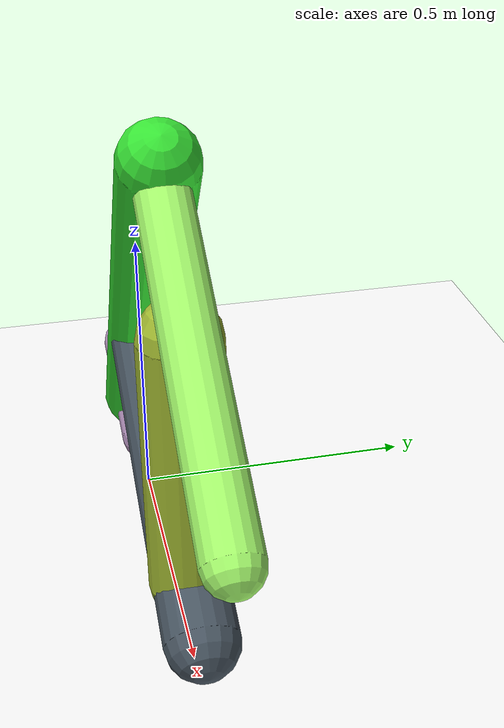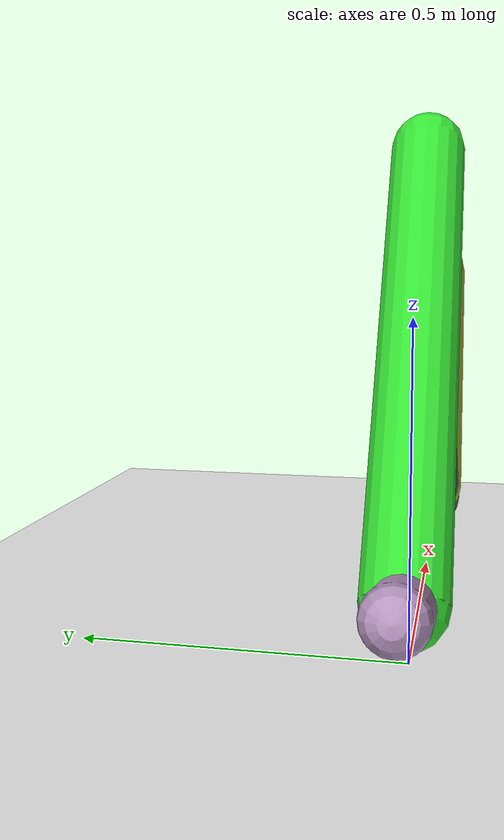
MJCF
<mujoco model="morphology">
  <option timestep="0.01"/>
  <default>
    <default class="/"/>
    <default class="0/"/>
    <default class="0/1/"/>
    <default class="0/1/2/"/>
    <default class="0/1/3/"/>
    <default class="0/1/3/4/"/>
  </default>
  <asset>
    <texture name="texplane" type="2d" builtin="checker" rgb1="0.10000000000000001 0.20000000000000001 0.29999999999999999" rgb2="0.20000000000000001 0.29999999999999999 0.40000000000000002" width="300" height="300"/>
    <material name="MatPlane" class="/" texture="texplane" texrepeat="20 20" specular="1" shininess="1" reflectance="0.5"/>
  </asset>
  <worldbody>
    <light name="//unnamed_light_0" class="/" directional="true" pos="0 0 1.5" dir="0 0 -1.3" cutoff="100" exponent="1" diffuse="1 1 1" specular="0.10000000000000001 0.10000000000000001 0.10000000000000001"/>
    <geom name="ground" class="/" type="plane" size="15 15 0.5" material="MatPlane" rgba="1 1 1 1"/>
    <site name="body" class="/" size="9.9999999999999995e-07 9.9999999999999995e-07 9.9999999999999995e-07" pos="0 0 0.10000000000000001"/>
    <body pos="0 0 0.10000000000000001" name="0/">
      <joint name="0/rootx/" class="/" type="slide" axis="1 0 0" limited="false" stiffness="0" armature="0" damping="0"/>
      <joint name="0/rootz/" class="/" type="slide" axis="0 0 1" limited="false" stiffness="0" armature="0" damping="0"/>
      <joint name="0/rooty/" class="/" type="hinge" axis="0 1 0" limited="false" stiffness="0" armature="0" damping="0"/>
      <geom name="0/geom" class="0/" type="capsule" contype="1" conaffinity="1" condim="3" size="0.044527801711272789" rgba="0.7287015071900641 0.59408060626268222 0.76637098005918847 1" friction="0.59999999999999998 0.10000000000000001 0.10000000000000001" fromto="0 0 0 -0.27117193552636459 0 0.061698379960571259"/>
      <site name="0/end0" class="0/" size="0.0050000000000000001" pos="-0.27117193552636459 0 0.061698379960571259"/>
      <site name="0/attach1" class="0/" size="9.9999999999999995e-07 9.9999999999999995e-07 9.9999999999999995e-07" pos="-0.11295794242245528 0 0.025700749738784778"/>
      <body pos="-0.11295794242245528 0 0.025700749738784778" name="0/1/">
        <joint name="0/1/joint/" class="0/" type="hinge" axis="0 1 0" limited="true" range="-50.704158623667823 50.704158623667823"/>
        <geom name="0/1/geom" class="0/1/" type="capsule" contype="1" conaffinity="1" condim="3" size="0.062309685883513183" rgba="0.21895950771978145 0.90289385545817413 0.20781603722888298 1" friction="0.59999999999999998 0.10000000000000001 0.10000000000000001" fromto="0 0 0 0.46560144682158366 0 0.64950445657928291"/>
        <site name="0/1/end1" class="0/1/" size="0.0050000000000000001" pos="0.46560144682158366 0 0.64950445657928291"/>
        <site name="0/1/attach2" class="0/1/" size="9.9999999999999995e-07 9.9999999999999995e-07 9.9999999999999995e-07" pos="0.45389921404022282 0 0.63318008216999422"/>
        <body pos="0.45389921404022282 0 0.63318008216999422" name="0/1/2/">
          <joint name="0/1/2/joint/" class="0/1/" type="hinge" axis="0 1 0" limited="true" range="-41.252355011827703 41.252355011827703"/>
          <geom name="0/1/2/geom" class="0/1/2/" type="capsule" contype="1" conaffinity="1" condim="3" size="0.042109919948124991" rgba="0.6460676732983246 0.97823012186600855 0.42291213646372539 1" friction="0.59999999999999998 0.10000000000000001 0.10000000000000001" fromto="0 0 0 0.49535915290091603 0 -0.30827088883217585"/>
          <site name="0/1/2/end2" class="0/1/2/" size="0.0050000000000000001" pos="0.49535915290091603 0 -0.30827088883217585"/>
        </body>
        <site name="0/1/attach3" class="0/1/" size="9.9999999999999995e-07 9.9999999999999995e-07 9.9999999999999995e-07" pos="0.16599423983466718 0 0.23155855565977332"/>
        <body pos="0.16599423983466718 0 0.23155855565977332" name="0/1/3/">
          <geom name="0/1/3/geom" class="0/1/3/" type="capsule" contype="1" conaffinity="1" condim="3" size="0.059107502084819977" rgba="0.28418522088492593 0.33644294652956108 0.3827168920987839 1" friction="0.59999999999999998 0.10000000000000001 0.10000000000000001" fromto="0 0 0 0.53674830235820892 0 -0.24652997966174039"/>
          <site name="0/1/3/end3" class="0/1/3/" size="0.0050000000000000001" pos="0.53674830235820892 0 -0.24652997966174039"/>
          <site name="0/1/3/attach4" class="0/1/3/" size="9.9999999999999995e-07 9.9999999999999995e-07 9.9999999999999995e-07" pos="0.44126597282416419 0 -0.20267468164838165"/>
          <body pos="0.44126597282416419 0 -0.20267468164838165" name="0/1/3/4/">
            <joint name="0/1/3/4/joint/" class="0/1/3/" type="hinge" axis="0 1 0" limited="true" range="-51.507365253770764 51.507365253770764"/>
            <geom name="0/1/3/4/geom" class="0/1/3/4/" type="capsule" contype="1" conaffinity="1" condim="3" size="0.063641921025895776" rgba="0.64421512721511365 0.73665174301955361 0.19790303826698585 1" friction="0.59999999999999998 0.10000000000000001 0.10000000000000001" fromto="0 0 0 -0.0099523115921669181 0 0.41080013876012456"/>
            <site name="0/1/3/4/end4" class="0/1/3/4/" size="0.0050000000000000001" pos="-0.0099523115921669181 0 0.41080013876012456"/>
          </body>
        </body>
      </body>
      <camera name="0/side" class="0/" mode="trackcom" pos="0.40000000000000002 -4 0.20000000000000001" quat="0.70699999999999996 0.70699999999999996 0 0"/>
    </body>
  </worldbody>
  <actuator>
    <motor name="0/1/motor" class="0/1/" ctrllimited="true" ctrlrange="-1 1" gear="54" joint="0/1/joint/"/>
    <motor name="0/1/2/motor" class="0/1/2/" ctrllimited="true" ctrlrange="-1 1" gear="51" joint="0/1/2/joint/"/>
    <motor name="0/1/3/4/motor" class="0/1/3/4/" ctrllimited="true" ctrlrange="-1 1" gear="76" joint="0/1/3/4/joint/"/>
  </actuator>
  <sensor>
    <subtreelinvel name="velocity" body="0/"/>
  </sensor>
</mujoco>
